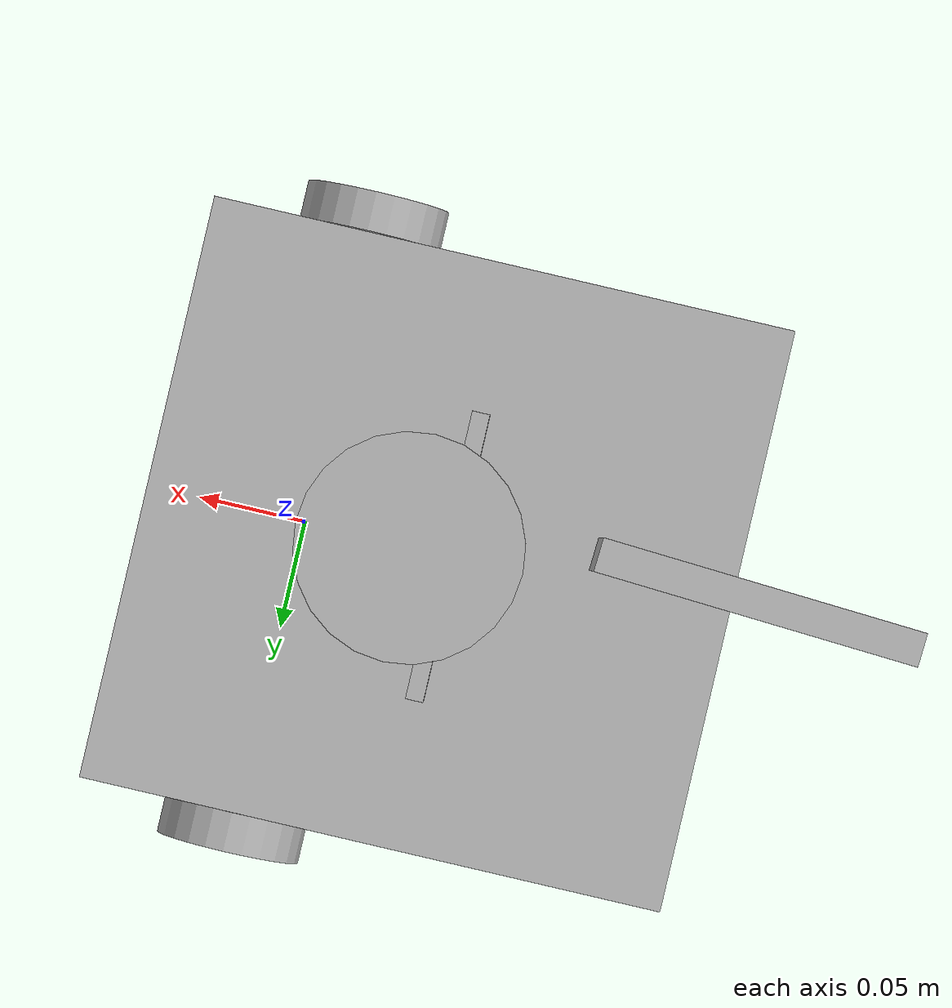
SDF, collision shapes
<?xml version="1.0" ?>
<sdf version="1.5">
  <model name="leader">

    <link name="base">

      <inertial>
        <pose>-0.064 0 0.048 0 0 0</pose>
        <inertia>
          <ixx>0.001</ixx>
          <ixy>0.000</ixy>
          <ixz>0.000</ixz>
          <iyy>0.001</iyy>
          <iyz>0.000</iyz>
          <izz>0.001</izz>
        </inertia>
        <mass>1.0</mass>
      </inertial>

      <collision name="base_collision">
        <pose>-0.064 0 0.048 0 0 0</pose>
        <geometry>
          <box>
            <size>0.265 0.265 0.089</size>
          </box>
        </geometry>
      </collision>

      <visual name="base_visual">
        <pose>-0.064 0 0 0 0 0</pose>
        <geometry>
          <mesh>
            <uri>model://turtlebot3_waffle/meshes/waffle_base.dae</uri>
            <scale>0.001 0.001 0.001</scale>
          </mesh>
        </geometry>
      </visual>

      <collision name="right_caster_collision">
        <pose>-0.177 -0.064 -0.004 0 0 0</pose>
        <geometry>
          <sphere>
            <radius>0.005000</radius>
          </sphere>
        </geometry>
        <surface>
          <friction>
            <ode>
              <mu>100000.0</mu>
              <mu2>100000.0</mu2>
              <fdir1>0 0 0</fdir1>
              <slip1>0</slip1>
              <slip2>0</slip2>
            </ode>
          </friction>
        </surface>
      </collision>

      <collision name="left_caster_collision">
        <pose>-0.177 0.064 -0.004 0 0 0</pose>
        <geometry>
          <sphere>
            <radius>0.005000</radius>
          </sphere>
        </geometry>
        <surface>
          <friction>
            <ode>
              <mu>100000.0</mu>
              <mu2>100000.0</mu2>
              <fdir1>0 0 0</fdir1>
              <slip1>0</slip1>
              <slip2>0</slip2>
            </ode>
          </friction>
        </surface>
      </collision>
    </link>

    <link name="lidar">
      <inertial>
        <pose>-0.052 0 0.111 0 0 0</pose>
        <inertia>
          <ixx>0.001</ixx>
          <ixy>0.000</ixy>
          <ixz>0.000</ixz>
          <iyy>0.001</iyy>
          <iyz>0.000</iyz>
          <izz>0.001</izz>
        </inertia>
        <mass>0.125</mass>
      </inertial>

      <collision name="lidar_sensor_collision">
        <pose>-0.052 0 0.111 0 0 0</pose>
        <geometry>
          <cylinder>
            <radius>0.0508</radius>
            <length>0.055</length>
          </cylinder>
        </geometry>
      </collision>

      <visual name="lidar_sensor_visual">
        <pose>-0.064 0 0.121 0 0 0</pose>
        <geometry>
          <mesh>
            <uri>model://turtlebot3_waffle/meshes/lds.dae</uri>
            <scale>0.001 0.001 0.001</scale>
          </mesh>
        </geometry>
      </visual>

      <sensor name="hls_lfcd_lds" type="ray">
        <always_on>1</always_on>
        <visualize>0</visualize>
        <pose>-0.064 0 0.121 0 0 0</pose>
        <update_rate>1800</update_rate>
        <ray>
          <scan>
            <horizontal>
              <samples>360</samples>
              <resolution>1.000000</resolution>
              <min_angle>0.000000</min_angle>
              <max_angle>6.280000</max_angle>
            </horizontal>
          </scan>
          <range>
            <min>0.120000</min>
            <max>3.5</max>
            <resolution>0.015000</resolution>
          </range>
          <noise>
            <type>gaussian</type>
            <mean>0.0</mean>
            <stddev>0.01</stddev>
          </noise>
        </ray>
      </sensor>
    </link>

    <link name="image">
      <inertial>
        <pose>-0.069 0 0.104 0 0 0</pose>
        <inertia>
          <ixx>0.001</ixx>
          <ixy>0.000</ixy>
          <ixz>0.000</ixz>
          <iyy>0.001</iyy>
          <iyz>0.000</iyz>
          <izz>0.001</izz>
        </inertia>
        <mass>0.035</mass>
      </inertial>

      <collision name="image_collision">
        <pose>-0.069 0 0.104 0 0 0</pose>
        <geometry>
          <box>
            <size>0.008 0.130 0.022</size>
          </box>
        </geometry>
      </collision>

      <sensor name="intel_realsense_r200" type="camera">
        <always_on>1</always_on>
        <visualize>0</visualize>
        <update_rate>30</update_rate>
        <pose>0.064 -0.047 0.107 0 0 0</pose>
        <camera>
          <horizontal_fov>1.02974</horizontal_fov>
          <image>
            <width>1920</width>
            <height>1080</height>
            <format>R8G8B8</format>
          </image>
          <clip>
            <near>0.02</near>
            <far>300</far>
          </clip>
        </camera>
      </sensor>
    </link>
<link name='link_0'>
      <inertial>
        <mass>0.000255162</mass>
        <inertia>
          <ixx>2.97166e-07</ixx>
          <ixy>0</ixy>
          <ixz>0</ixz>
          <iyy>7.34265e-07</iyy>
          <iyz>0</iyz>
          <izz>4.4676e-07</izz>
        </inertia>
        <pose frame=''>0 0 0 0 -0 0</pose>
      </inertial>
      <pose frame=''>-0.203885 -0.011671 0.123213 -0.000188 0.003172 3.08294</pose>
      <self_collide>0</self_collide>
      <enable_wind>0</enable_wind>
      <kinematic>0</kinematic>
      <visual name='visual'>
        <pose frame=''>0 0 0 0 -0 0</pose>
        <geometry>
          <mesh>
            <uri>model://leader/meshes/cubemesh.dae</uri>
            <scale>0.2 0.2 0.2</scale>
          </mesh>
        </geometry>
        <material>
          <lighting>1</lighting>
          <script>
            <uri>model://leader/materials/scripts</uri>
            <uri>model://leader/materials/textures</uri>
            <name>mymarker/Diffuse</name>
          </script>
          <emissive>0 0 0 1</emissive>
        </material>
        <transparency>0</transparency>
        <cast_shadows>1</cast_shadows>
      </visual>
      <collision name='collision'>
        <laser_retro>0</laser_retro>
        <max_contacts>10</max_contacts>
        <pose frame=''>0 0 0 0 -0 0</pose>
        <geometry>
          <box>
            <size>0.144165 0.015072 0.117253</size>
          </box>
        </geometry>
        <surface>
          <friction>
            <ode>
              <mu>1</mu>
              <mu2>1</mu2>
              <fdir1>0 0 0</fdir1>
              <slip1>0</slip1>
              <slip2>0</slip2>
            </ode>
            <torsional>
              <coefficient>1</coefficient>
              <patch_radius>0</patch_radius>
              <surface_radius>0</surface_radius>
              <use_patch_radius>1</use_patch_radius>
              <ode>
                <slip>0</slip>
              </ode>
            </torsional>
          </friction>
          <bounce>
            <restitution_coefficient>0</restitution_coefficient>
            <threshold>1e+06</threshold>
          </bounce>
          <contact>
            <collide_without_contact>0</collide_without_contact>
            <collide_without_contact_bitmask>1</collide_without_contact_bitmask>
            <collide_bitmask>1</collide_bitmask>
            <ode>
              <soft_cfm>0</soft_cfm>
              <soft_erp>0.2</soft_erp>
              <kp>1e+13</kp>
              <kd>1</kd>
              <max_vel>0.01</max_vel>
              <min_depth>0</min_depth>
            </ode>
            <bullet>
              <split_impulse>1</split_impulse>
              <split_impulse_penetration_threshold>-0.01</split_impulse_penetration_threshold>
              <soft_cfm>0</soft_cfm>
              <soft_erp>0.2</soft_erp>
              <kp>1e+13</kp>
              <kd>1</kd>
            </bullet>
          </contact>
        </surface>
      </collision>
    </link>
    <link name="left_wheel">

      <inertial>
        <pose>0.0 0.144 0.023 -1.57 0 0</pose>
        <inertia>
          <ixx>0.001</ixx>
          <ixy>0.000</ixy>
          <ixz>0.000</ixz>
          <iyy>0.001</iyy>
          <iyz>0.000</iyz>
          <izz>0.001</izz>
        </inertia>
        <mass>0.1</mass>
      </inertial>

      <collision name="left_wheel_collision">
        <pose>0.0 0.144 0.023 -1.57 0 0</pose>
        <geometry>
          <cylinder>
            <radius>0.033</radius>
            <length>0.018</length>
          </cylinder>
        </geometry>
          <surface>
            <friction>
              <ode>
                <mu>100000.0</mu>
                <mu2>100000.0</mu2>
                <fdir1>0 0 0</fdir1>
                <slip1>0.0</slip1>
                <slip2>0.0</slip2>
              </ode>
          </friction>
        </surface>
      </collision>

      <visual name="left_wheel_visual">
        <pose>0.0 0.144 0.023 0 0 0</pose>
        <geometry>
          <mesh>
            <uri>model://turtlebot3_waffle/meshes/left_tire.dae</uri>
            <scale>0.001 0.001 0.001</scale>
          </mesh>
        </geometry>
      </visual>
    </link>

    <link name="right_wheel">

      <inertial>
        <pose>0.0 -0.144 0.023 -1.57 0 0</pose>
        <inertia>
          <ixx>0.001</ixx>
          <ixy>0.000</ixy>
          <ixz>0.000</ixz>
          <iyy>0.001</iyy>
          <iyz>0.000</iyz>
          <izz>0.001</izz>
        </inertia>
        <mass>0.1</mass>
      </inertial>

      <collision name="right_wheel_collision">
        <pose>0.0 -0.144 0.023 -1.57 0 0</pose>
        <geometry>
          <cylinder>
            <radius>0.033</radius>
            <length>0.018</length>
          </cylinder>
        </geometry>
          <surface>
            <friction>
              <ode>
                <mu>100000.0</mu>
                <mu2>100000.0</mu2>
                <fdir1>0 0 0</fdir1>
                <slip1>0.0</slip1>
                <slip2>0.0</slip2>
              </ode>
          </friction>
        </surface>
      </collision>

      <visual name="right_wheel_visual">
        <pose>0.0 -0.144 0.023 0 0 0</pose>
        <geometry>
          <mesh>
            <uri>model://turtlebot3_waffle/meshes/right_tire.dae</uri>
            <scale>0.001 0.001 0.001</scale>
          </mesh>
        </geometry>
      </visual>
    </link>

    <joint name="left_wheel_joint" type="revolute">
      <parent>base</parent>
      <child>left_wheel</child>
      <pose>0.0 0.144 0.023 -1.57 0 0</pose>
      <axis>
        <xyz>0 1 0</xyz>
      </axis>
    </joint>

    <joint name="right_wheel_joint" type="revolute">
      <parent>base</parent>
      <child>right_wheel</child>
      <pose>0.0 -0.144 0.023 -1.57 0 0</pose>
      <axis>
        <xyz>0 1 0</xyz>
      </axis>
    </joint>

    <joint name="lidar_joint" type="fixed">
      <parent>base</parent>
      <child>lidar</child>
      <pose>-0.064 0 0.121 0 0 0</pose>
      <axis>
        <xyz>0 0 1</xyz>
        <use_parent_model_frame>true</use_parent_model_frame>
      </axis>
    </joint>

    <joint name="image_joint" type="fixed">
      <parent>base</parent>
      <child>image</child>
      <pose>0.064 -0.065 0.094 0 0 0</pose>
      <axis>
        <xyz>0 0 1</xyz>
        <use_parent_model_frame>true</use_parent_model_frame>
      </axis>
    </joint>

  </model>
</sdf>
